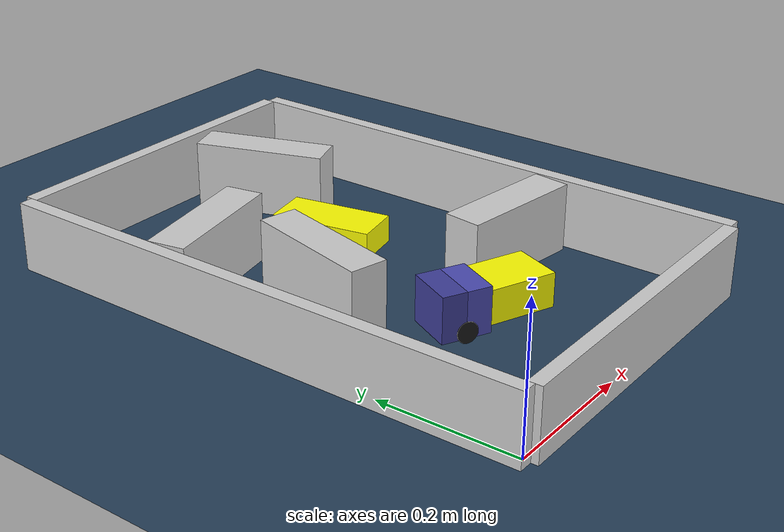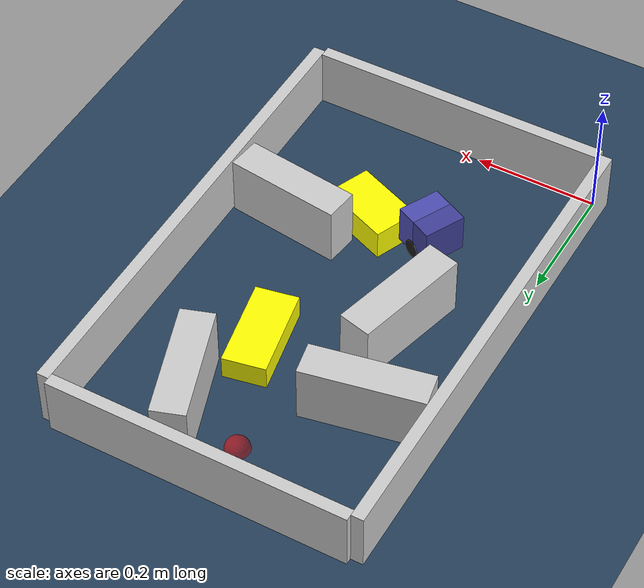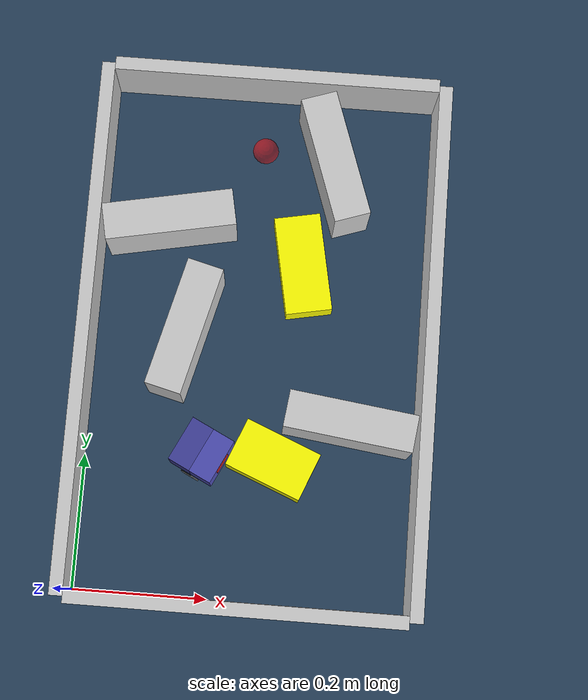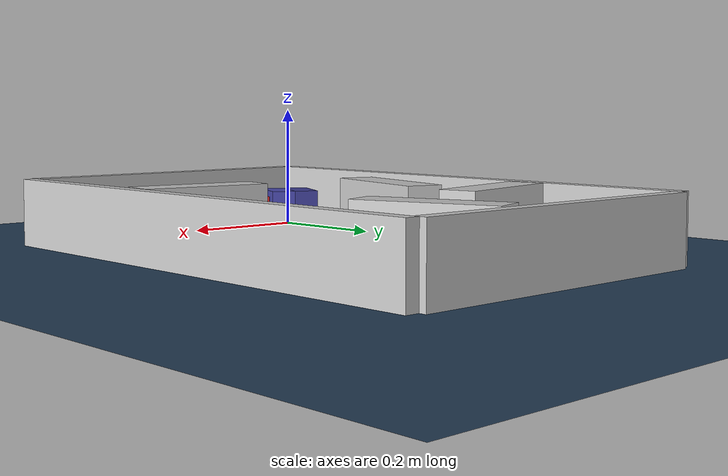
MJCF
<?xml version='1.0' encoding='utf-8'?>
<mujoco model="real_buildable">
  <compiler angle="degree" />
  <option timestep="0.002" integrator="implicitfast" iterations="100" cone="elliptic" />
  <default>
    <geom density="1" />
  </default>
  <asset>
    <texture builtin="gradient" height="3072" rgb1="0.3 0.5 0.7" rgb2="0 0 0" type="skybox" width="512" />
    <texture builtin="checker" height="300" mark="edge" markrgb="0.8 0.8 0.8" name="groundplane" rgb1="0.2 0.3 0.4" rgb2="0.1 0.2 0.3" type="2d" width="300" />
    <material name="groundplane" reflectance="0.2" texrepeat="5 5" texture="groundplane" texuniform="true" />
  </asset>
  <worldbody>
    <light dir="0 0 -1" directional="true" pos="0 0 1.5" />
    <geom name="floor" type="plane" condim="4" friction="0.5 0.005 0.001" material="groundplane" size="0 0 0.05" />
    <body name="walls">
      <geom name="wall_boundary_left" type="box" condim="4" friction="1.0 0.005 0.0001" rgba="0.8 0.8 0.8 1" pos="-0.010000 0.387500 0.050000" euler="0 0 0.000000" size="0.010000 0.397500 0.050000" />
      <geom name="wall_boundary_right" type="box" condim="4" friction="1.0 0.005 0.0001" rgba="0.8 0.8 0.8 1" pos="0.500000 0.387500 0.050000" euler="0 0 0.000000" size="0.010000 0.397500 0.050000" />
      <geom name="wall_boundary_bottom" type="box" condim="4" friction="1.0 0.005 0.0001" rgba="0.8 0.8 0.8 1" pos="0.245000 -0.010000 0.050000" euler="0 0 0.000000" size="0.245000 0.010000 0.050000" />
      <geom name="wall_boundary_top" type="box" condim="4" friction="1.0 0.005 0.0001" rgba="0.8 0.8 0.8 1" pos="0.245000 0.785000 0.050000" euler="0 0 0.000000" size="0.245000 0.010000 0.050000" />
      <geom name="wall_inner_1" type="box" condim="4" friction="1.0 0.005 0.0001" rgba="0.8 0.8 0.8 1" pos="0.390000 0.269000 0.050000" euler="0 0 172.600000" size="0.095000 0.027500 0.050000" />
      <geom name="wall_inner_2" type="box" condim="4" friction="1.0 0.005 0.0001" rgba="0.8 0.8 0.8 1" pos="0.138000 0.390000 0.050000" euler="0 0 75.800000" size="0.097500 0.027500 0.050000" />
      <geom name="wall_inner_3" type="box" condim="4" friction="1.0 0.005 0.0001" rgba="0.8 0.8 0.8 1" pos="0.101000 0.556000 0.050000" euler="0 0 11.100000" size="0.097500 0.027500 0.050000" />
      <geom name="wall_inner_4" type="box" condim="4" friction="1.0 0.005 0.0001" rgba="0.8 0.8 0.8 1" pos="0.341000 0.664000 0.050000" euler="0 0 108.900000" size="0.097500 0.027500 0.050000" />
    </body>
    <body name="car" pos="0.17712754273248954 0.21260559112758876 0.01" quat="0.97376397551571614 0 0 -0.22756036559082018">
      <freejoint name="car_freejoint" />
      <inertial pos="0 0 0.0375" mass="0.35" diaginertia="0.000266 0.000266 0.000286" />
      <geom name="front_chassis_collision" type="box" pos="0.0175 0 0.0375" size="0.0175 0.035 0.0325" rgba="0.3 0.3 0.7 1" />
      <geom name="rear_chassis_collision" type="box" pos="-0.0175 0 0.0375" size="0.0175 0.035 0.0325" rgba="0.25 0.25 0.6 1" />
      <geom name="front_marker" type="box" pos="0.034 0 0.0505" size="0.002 0.015 0.01" rgba="1 0.2 0.2 1" contype="0" conaffinity="0" />
      <body name="rear_support_body" pos="-0.03 0 0.0025">
        <joint name="rear_caster_joint" type="ball" damping="0.0001" />
        <inertial pos="0 0 0" mass="0.025" diaginertia="0.000001 0.000001 0.000001" />
        <geom name="rear_support" type="sphere" pos="0 0 0" size="0.0025" friction="0 0 0" rgba="0.7 0.1 0.1 1" />
      </body>
      <body name="front_support_body" pos="0.03 0 0.0025">
        <joint name="front_caster_joint" type="ball" damping="0.0001" />
        <inertial pos="0 0 0" mass="0.025" diaginertia="0.000001 0.000001 0.000001" />
        <geom name="front_support" type="sphere" pos="0 0 0" size="0.0025" friction="0 0 0" rgba="0.1 0.7 0.1 1" />
      </body>
      <body name="left_wheel" pos="0 0.0375 0.015">
        <inertial pos="0 0 0" mass="0.05" diaginertia="0.000003 0.000006 0.000003" />
        <joint name="left_wheel_joint" type="hinge" axis="0 1 0" damping="0.01" armature="0.0001" />
        <geom name="left_wheel_collision" type="cylinder" size="0.015 0.0005" euler="90 0 0" rgba="0.1 0.1 0.1 1" />
      </body>
      <body name="right_wheel" pos="0 -0.0375 0.015">
        <inertial pos="0 0 0" mass="0.05" diaginertia="0.000003 0.000006 0.000003" />
        <joint name="right_wheel_joint" type="hinge" axis="0 1 0" damping="0.01" armature="0.0001" />
        <geom name="right_wheel_collision" type="cylinder" size="0.015 0.0005" euler="90 0 0" rgba="0.1 0.1 0.1 1" />
      </body>
    </body>
    <body name="obstacle_0_movable">
      <geom name="obstacle_0_movable" condim="4" pos="0.28212157145170685 0.20998338313588638 0.025000000000000001" friction="1 0.005 0.0001" rgba="1 1 0 1" size="0.037500 0.060000 0.025000" type="box" mass="0.1" quat="0.83023276449960259 0 0 0.55741686084235686" />
      <joint type="free" />
    </body>
    <body name="obstacle_1_movable">
      <geom name="obstacle_1_movable" condim="4" pos="0.30499999999999999 0.51000000000000001 0.02" friction="1 0.005 0.0001" rgba="1 1 0 1" size="0.035000 0.075000 0.020000" type="box" mass="0.1" quat="0.99539619836717885 0 0 0.095845752520223981" />
      <joint type="free" />
    </body>
    <site name="goal" type="sphere" pos="0.235000 0.695000 0.0" size="0.02" rgba="1 0 0 0.5" />
  </worldbody>
  <actuator>
    <velocity name="left_wheel_drive" joint="left_wheel_joint" ctrlrange="-25 25" kv="0.75" forcerange="-0.5 0.5" />
    <velocity name="right_wheel_drive" joint="right_wheel_joint" ctrlrange="-25 25" kv="0.75" forcerange="-0.5 0.5" />
  </actuator>
</mujoco>
